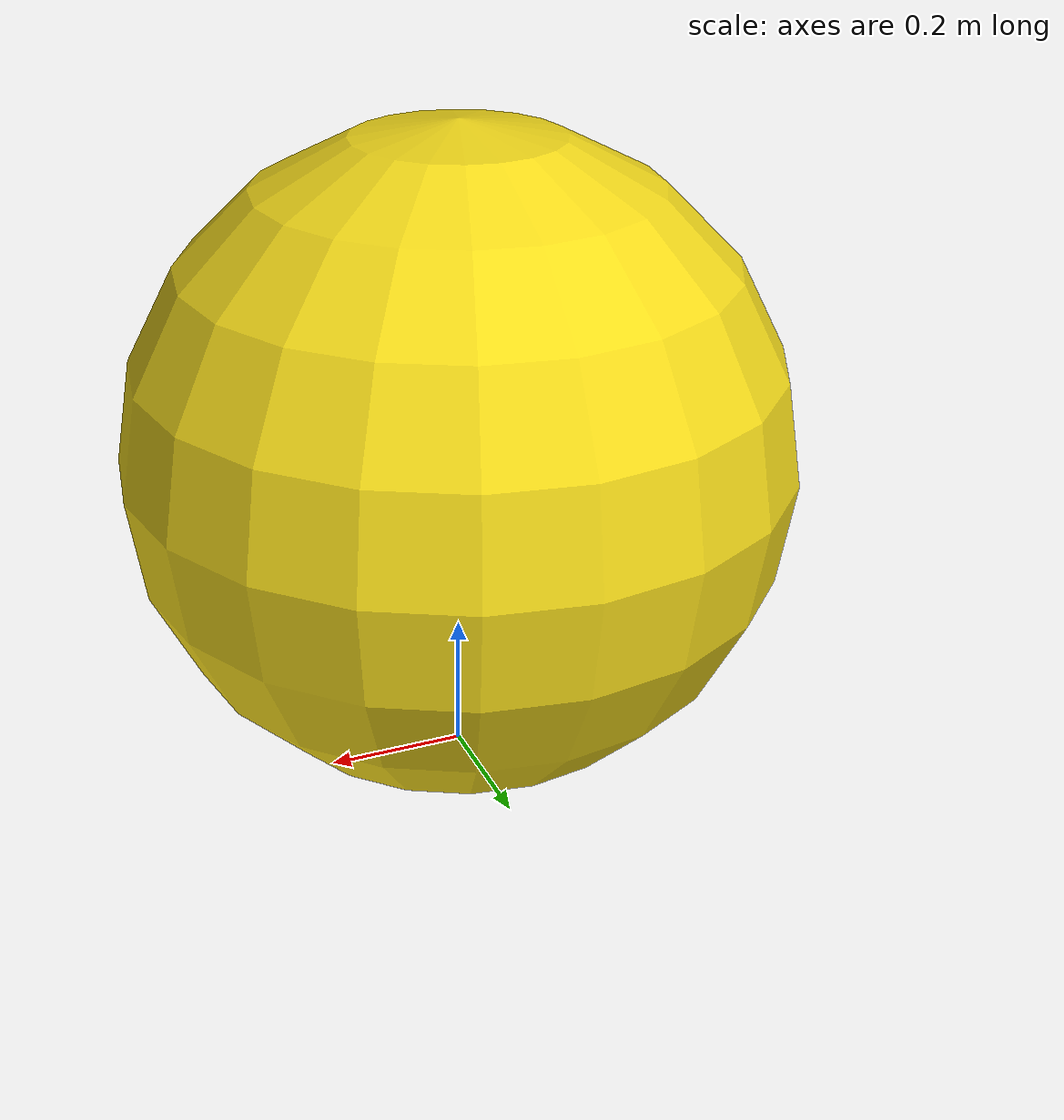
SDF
<?xml version="1.0"?>
<sdf version="1.7">
  <model name="xgc2_geom_sphere">
    <link name="body">
      <kinematic>true</kinematic>
      <gravity>false</gravity>
      <collision name="sphere">
        <pose>0 0 0.48 0 0 0</pose>
        <geometry><sphere><radius>0.48</radius></sphere></geometry>
      </collision>
      <visual name="sphere">
        <pose>0 0 0.48 0 0 0</pose>
        <geometry><sphere><radius>0.48</radius></sphere></geometry>
        <material><ambient>0.95 0.85 0.1 1</ambient><diffuse>0.95 0.85 0.1 1</diffuse></material>
      </visual>
    </link>
  </model>
</sdf>
